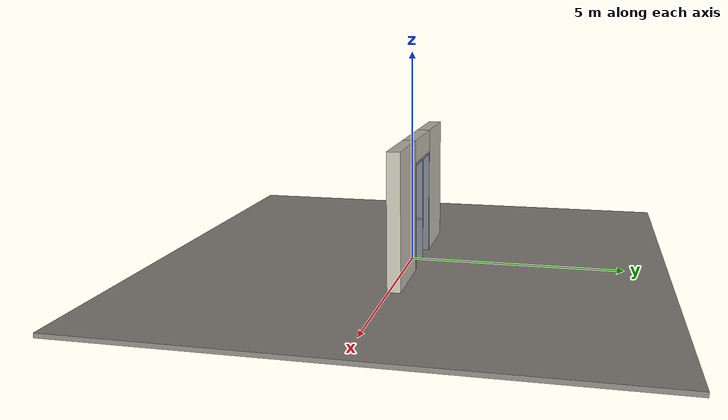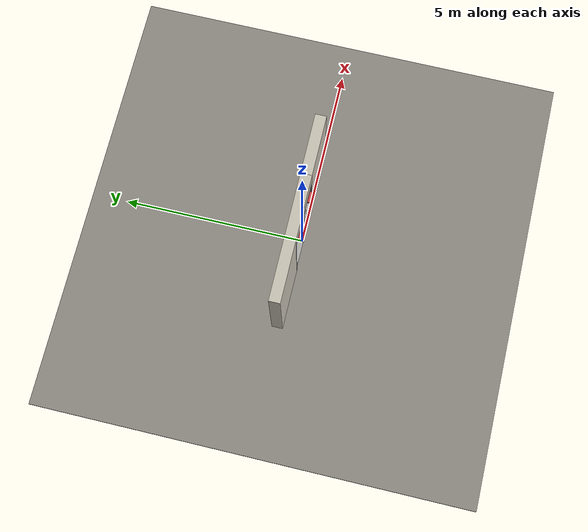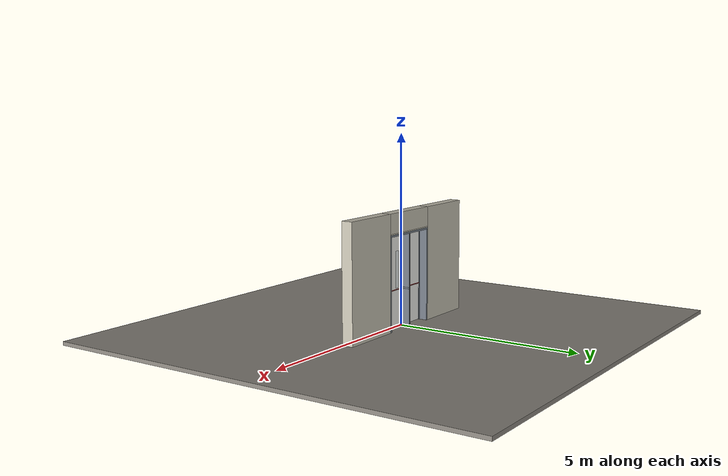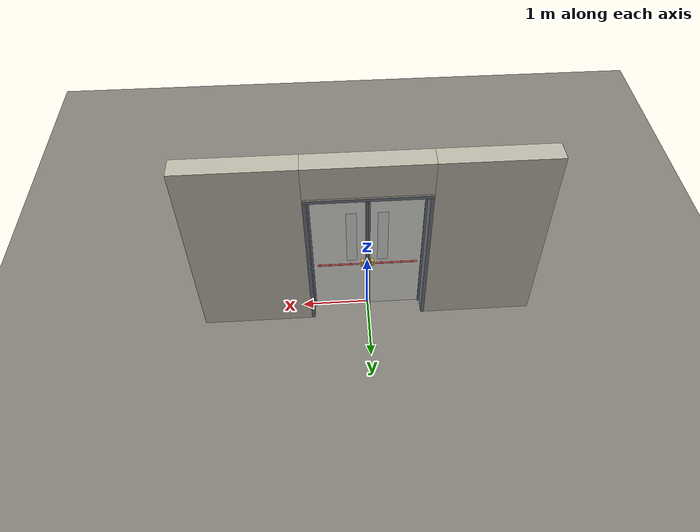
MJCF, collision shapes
<?xml version="1.0" ?>
<mujoco model="db0614_swing_double_full">
  <compiler angle="radian" meshdir="../../hardware" texturedir="../../textures" autolimits="true" inertiafromgeom="false"/>
  <option timestep="0.002" integrator="implicitfast" cone="elliptic" impratio="10" noslip_iterations="3">
    <flag multiccd="enable"/>
  </option>
  <size memory="16M"/>
  <default>
    <geom condim="4" solref="0.005 1" solimp="0.95 0.99 0.001"/>
    <joint solreflimit="0.005 1" solimplimit="0.95 0.99 0.001"/>
    <tendon solreflimit="0.005 1"/>
    <equality solref="0.002 1"/>
  </default>
  <visual>
    <headlight ambient="0.4 0.4 0.4" diffuse="0.7 0.7 0.7" specular="0.2 0.2 0.2"/>
    <quality shadowsize="4096"/>
    <map znear="0.01" zfar="60"/>
  </visual>
  <asset>
    <mesh name="closer_body_fdc4667657" file="closer_body_fdc4667657.obj"/>
    <mesh name="crossbar_268e86df6c" file="crossbar_268e86df6c.obj"/>
    <mesh name="exit_sign_a6449bfa2c" file="exit_sign_a6449bfa2c.obj"/>
    <mesh name="hinge_e22b26c0c1" file="hinge_e22b26c0c1.obj"/>
    <mesh name="hinge_jamb_e1d088f8dc" file="hinge_jamb_e1d088f8dc.obj"/>
    <mesh name="pull_1e5d69a91a" file="pull_1e5d69a91a.obj"/>
    <material name="mat_floor" rgba="0.55 0.53 0.5 1" specular="0.2" shininess="0.15" reflectance="0"/>
    <material name="mat_wall" rgba="0.78 0.76 0.7 1" specular="0.2" shininess="0.1" reflectance="0"/>
    <material name="mat_leaf_a" rgba="0.93 0.93 0.91 1" specular="0.2" shininess="0.42" reflectance="0"/>
    <material name="mat_glass" rgba="0.85 0.92 0.95 0.25" specular="0.2" shininess="0.95" reflectance="0.1"/>
    <material name="mat_hinge" rgba="0.65 0.66 0.68 1" specular="0.74" shininess="0.5" reflectance="0.36"/>
    <material name="mat_op_brass" rgba="0.85 0.66 0.3 1" specular="0.8" shininess="0.75" reflectance="0.4"/>
    <material name="mat_op_stainless" rgba="0.75 0.76 0.77 1" specular="0.8" shininess="0.65" reflectance="0.4"/>
    <material name="mat_bolt" rgba="0.75 0.76 0.77 1" specular="0.8" shininess="0.65" reflectance="0.4"/>
    <material name="mat_closer" rgba="0.22 0.17 0.13 1" specular="0.8" shininess="0.6" reflectance="0.4"/>
    <material name="mat_exit_sign" rgba="0.85 0.1 0.1 1" specular="0.2" shininess="0.6" reflectance="0"/>
    <material name="mat_sign_bracket" rgba="0.8 0.81 0.83 1" specular="0.8" shininess="0.6" reflectance="0.4"/>
    <material name="mat_leaf_b" rgba="0.93 0.93 0.91 1" specular="0.2" shininess="0.42" reflectance="0"/>
    <material name="mat_frame" rgba="0.45 0.48 0.52 1" specular="0.32" shininess="0.6" reflectance="0.08"/>
    <texture name="skybox" type="skybox" builtin="gradient" rgb1="0.6 0.7 0.85" rgb2="0.9 0.92 0.95" width="256" height="256"/>
  </asset>
  <worldbody>
    <light name="sun" pos="1.5 -2.5 4" dir="-0.3 0.5 -0.8" directional="true" diffuse="0.8 0.8 0.8" specular="0.3 0.3 0.3" castshadow="true"/>
    <light name="fill" pos="-1.5 2.5 3" dir="0.3 -0.5 -0.7" directional="true" diffuse="0.35 0.35 0.4" castshadow="false"/>
    <camera name="robot_view" pos="0 -2.814812 2.043887" xyaxes="1 0 0 0 0.26963 0.962964" fovy="52"/>
    <camera name="far_view" pos="0 3.030813 2.043887" xyaxes="-1 0 0 0 -0.26963 0.962964" fovy="52"/>
    <camera name="iso" pos="-2.221337 -2.347163 2.511538" xyaxes="0.741536 -0.670913 0 0.242917 0.268487 0.932151" fovy="46"/>
    <camera name="detail_handle" pos="0.062 -0.882 1.296" xyaxes="0.97561 0.219512 0 -0.070934 0.315262 0.94635" fovy="38"/>
    <geom name="floor" type="box" size="6 6 0.05" pos="0 0 -0.05" material="mat_floor" group="0" contype="1" conaffinity="1" friction="0.8 0.005 0.0001" density="2400"/>
    <geom name="wall_left" type="box" size="0.81625 0.15 1.5255" pos="-1.68375 0.108 1.5255" material="mat_wall" group="0" contype="1" conaffinity="1" friction="0.6 0.005 0.0001" density="800"/>
    <geom name="wall_right" type="box" size="0.81625 0.15 1.5255" pos="1.68375 0.108 1.5255" material="mat_wall" group="0" contype="1" conaffinity="1" friction="0.6 0.005 0.0001" density="800"/>
    <geom name="wall_header" type="box" size="0.8675 0.15 0.26" pos="0 0.108 2.791" material="mat_wall" group="0" contype="1" conaffinity="1" friction="0.6 0.005 0.0001" density="800"/>
    <geom name="hinge_0_jamb" type="mesh" mesh="hinge_jamb_e1d088f8dc" pos="-0.8145 -0.029 0.259" material="mat_hinge" group="1" contype="0" conaffinity="0" density="7850"/>
    <geom name="hinge_1_jamb" type="mesh" mesh="hinge_jamb_e1d088f8dc" pos="-0.8145 -0.029 0.928333" material="mat_hinge" group="1" contype="0" conaffinity="0" density="7850"/>
    <geom name="hinge_2_jamb" type="mesh" mesh="hinge_jamb_e1d088f8dc" pos="-0.8145 -0.029 1.597667" material="mat_hinge" group="1" contype="0" conaffinity="0" density="7850"/>
    <geom name="hinge_3_jamb" type="mesh" mesh="hinge_jamb_e1d088f8dc" pos="-0.8145 -0.029 2.267" material="mat_hinge" group="1" contype="0" conaffinity="0" density="7850"/>
    <geom name="exit_sign" type="mesh" mesh="exit_sign_a6449bfa2c" pos="0 0.15 2.751" material="mat_exit_sign" group="2" contype="0" conaffinity="0" density="500"/>
    <geom name="hinge_0_jamb_2" type="mesh" mesh="hinge_jamb_e1d088f8dc" pos="0.8145 -0.029 0.259" quat="0 0 1 0" material="mat_hinge" group="1" contype="0" conaffinity="0" density="7850"/>
    <geom name="hinge_1_jamb_2" type="mesh" mesh="hinge_jamb_e1d088f8dc" pos="0.8145 -0.029 0.928333" quat="0 0 1 0" material="mat_hinge" group="1" contype="0" conaffinity="0" density="7850"/>
    <geom name="hinge_2_jamb_2" type="mesh" mesh="hinge_jamb_e1d088f8dc" pos="0.8145 -0.029 1.597667" quat="0 0 1 0" material="mat_hinge" group="1" contype="0" conaffinity="0" density="7850"/>
    <geom name="hinge_3_jamb_2" type="mesh" mesh="hinge_jamb_e1d088f8dc" pos="0.8145 -0.029 2.267" quat="0 0 1 0" material="mat_hinge" group="1" contype="0" conaffinity="0" density="7850"/>
    <geom name="jamb_l" type="box" size="0.025 0.15 1.2255" pos="-0.8425 0.108 1.2255" material="mat_frame" group="0" contype="1" conaffinity="1" friction="0.6 0.005 0.0001" density="300"/>
    <geom name="jamb_r" type="box" size="0.025 0.15 1.2255" pos="0.8425 0.108 1.2255" material="mat_frame" group="0" contype="1" conaffinity="1" friction="0.6 0.005 0.0001" density="300"/>
    <geom name="jamb_head" type="box" size="0.8675 0.15 0.025" pos="0 0.108 2.476" material="mat_frame" group="0" contype="1" conaffinity="1" friction="0.6 0.005 0.0001" density="300"/>
    <geom name="head_stud" type="box" size="0.8675 0.15 0.015" pos="0 0.108 2.516" material="mat_wall" group="0" contype="1" conaffinity="1" friction="0.6 0.005 0.0001" density="500"/>
    <geom name="stop_l" type="box" size="0.015 0.008 1.2255" pos="-0.8025 0.0305 1.2255" material="mat_frame" group="0" contype="1" conaffinity="1" friction="0.6 0.005 0.0001" density="300"/>
    <geom name="stop_r" type="box" size="0.015 0.008 1.2255" pos="0.8025 0.0305 1.2255" material="mat_frame" group="0" contype="1" conaffinity="1" friction="0.6 0.005 0.0001" density="300"/>
    <geom name="stop_head" type="box" size="0.8175 0.008 0.015" pos="0 0.0305 2.436" material="mat_frame" group="0" contype="1" conaffinity="1" friction="0.6 0.005 0.0001" density="300"/>
    <geom name="mullion_a_1016_wall_n" type="box" size="0.0125 0.1235 0.02" pos="-0.0125 0.1345 1.016" material="mat_frame" group="0" contype="1" conaffinity="1" friction="0.6 0.005 0.0001" density="300"/>
    <geom name="mullion_a_1016_wall_p" type="box" size="0.0125 0.008 0.02" pos="-0.0125 -0.019 1.016" material="mat_frame" group="0" contype="1" conaffinity="1" friction="0.6 0.005 0.0001" density="300"/>
    <geom name="mullion_a_1016_ramp" type="box" size="0.0125 0.020156 0.02" pos="-0.004147 -0.038298 1.016" quat="0.9665 0 0 0.256668" material="mat_frame" group="0" contype="1" conaffinity="1" friction="0.12 0.005 0.0001" density="300"/>
    <geom name="mullion_a_1016_back" type="box" size="0.002 0.011 0.02" pos="0 0 1.016" material="mat_frame" group="0" contype="1" conaffinity="1" friction="0.6 0.005 0.0001" density="300"/>
    <geom name="mullion_a_seg_0" type="box" size="0.0125 0.15 0.498" pos="-0.0125 0.108 0.498" material="mat_frame" group="0" contype="1" conaffinity="1" friction="0.6 0.005 0.0001" density="300"/>
    <geom name="mullion_a_seg_1" type="box" size="0.0125 0.15 0.7075" pos="-0.0125 0.108 1.7435" material="mat_frame" group="0" contype="1" conaffinity="1" friction="0.6 0.005 0.0001" density="300"/>
    <geom name="mullion_b_1016_wall_n" type="box" size="0.0125 0.1235 0.02" pos="0.0125 0.1345 1.016" material="mat_frame" group="0" contype="1" conaffinity="1" friction="0.6 0.005 0.0001" density="300"/>
    <geom name="mullion_b_1016_wall_p" type="box" size="0.0125 0.008 0.02" pos="0.0125 -0.019 1.016" material="mat_frame" group="0" contype="1" conaffinity="1" friction="0.6 0.005 0.0001" density="300"/>
    <geom name="mullion_b_1016_ramp" type="box" size="0.0125 0.020156 0.02" pos="0.004147 -0.038298 1.016" quat="0.9665 0 0 -0.256668" material="mat_frame" group="0" contype="1" conaffinity="1" friction="0.12 0.005 0.0001" density="300"/>
    <geom name="mullion_b_seg_0" type="box" size="0.0125 0.15 0.498" pos="0.0125 0.108 0.498" material="mat_frame" group="0" contype="1" conaffinity="1" friction="0.6 0.005 0.0001" density="300"/>
    <geom name="mullion_b_seg_1" type="box" size="0.0125 0.15 0.7075" pos="0.0125 0.108 1.7435" material="mat_frame" group="0" contype="1" conaffinity="1" friction="0.6 0.005 0.0001" density="300"/>
    <site name="approach_point" pos="0 -1.5 0" quat="1 0 0 0" size="0.05" rgba="0.2 0.9 0.2 0.5" group="4"/>
    <site name="goal_point" pos="0 1.5 0" quat="1 0 0 0" size="0.05" rgba="0.2 0.9 0.2 0.5" group="4"/>
    <site name="door_plane_center" pos="0 0 1.2255" quat="1 0 0 0" size="0.02" rgba="0.2 0.9 0.2 0.5" group="4"/>
    <site name="approach_point_2" pos="0 -1.5 0" quat="1 0 0 0" size="0.05" rgba="0.2 0.9 0.2 0.5" group="4"/>
    <site name="goal_point_2" pos="0 1.5 0" quat="1 0 0 0" size="0.05" rgba="0.2 0.9 0.2 0.5" group="4"/>
    <site name="door_plane_center_2" pos="0 0 1.2255" quat="1 0 0 0" size="0.02" rgba="0.2 0.9 0.2 0.5" group="4"/>
    <site name="approach_point_3" pos="0 -1.5 0" quat="1 0 0 0" size="0.05" rgba="0.2 0.9 0.2 0.5" group="4"/>
    <site name="goal_point_3" pos="0 1.5 0" quat="1 0 0 0" size="0.05" rgba="0.2 0.9 0.2 0.5" group="4"/>
    <site name="door_plane_center_3" pos="0 0 1.2255" quat="1 0 0 0" size="0.02" rgba="0.2 0.9 0.2 0.5" group="4"/>
    <body name="leaf_a" pos="-0.8175 0 0">
      <inertial pos="0.37652 -0.015189 1.461667" mass="58.67362" quat="0.501341 -0.480511 -0.508021 -0.509589" diaginertia="2.726064846 35.177713769 37.796969503"/>
      <joint name="leaf_a_hinge" type="hinge" axis="0 0 -1" pos="0.003 -0.029 0" limited="true" range="0 1.570796" solreflimit="0.02 1" damping="12.192359" frictionloss="1.992902" stiffness="15.011494" springref="-1.939847" armature="0.02"/>
      <geom name="leaf_a_slab" type="box" size="0.39325 0.022 1.219" pos="0.39625 0 1.228" material="mat_leaf_a" group="0" contype="1" conaffinity="1" friction="0.4 0.005 0.0001" density="1"/>
      <geom name="leaf_a_glass_0" type="box" size="0.075 0.0228 0.4876" pos="0.5945 0 1.52056" material="mat_glass" group="1" contype="0" conaffinity="0" density="1"/>
      <geom name="hinge_0" type="mesh" mesh="hinge_e22b26c0c1" pos="0.003 -0.029 0.259" material="mat_hinge" group="1" contype="0" conaffinity="0" density="7850"/>
      <geom name="hinge_1" type="mesh" mesh="hinge_e22b26c0c1" pos="0.003 -0.029 0.928333" material="mat_hinge" group="1" contype="0" conaffinity="0" density="7850"/>
      <geom name="hinge_2" type="mesh" mesh="hinge_e22b26c0c1" pos="0.003 -0.029 1.597667" material="mat_hinge" group="1" contype="0" conaffinity="0" density="7850"/>
      <geom name="hinge_3" type="mesh" mesh="hinge_e22b26c0c1" pos="0.003 -0.029 2.267" material="mat_hinge" group="1" contype="0" conaffinity="0" density="7850"/>
      <geom name="leaf_a_exit_device_case" type="box" size="0.022 0.033 0.045" pos="0.7445 0.055 1.016" material="mat_op_brass" group="0" contype="1" conaffinity="1" friction="0.6 0.005 0.0001" density="3000"/>
      <geom name="leaf_a_far_pull_n" type="mesh" mesh="pull_1e5d69a91a" pos="0.6995 -0.022 1.016" quat="0.707107 0.707107 0 0" material="mat_op_stainless" group="1" contype="0" conaffinity="0" density="3000"/>
      <geom name="leaf_a_far_pull_col_n" type="capsule" size="0.0095 0.08" pos="0.6995 -0.082 1.016" material="mat_op_stainless" group="3" contype="1" conaffinity="1" rgba="0.8 0.3 0.3 0.25" friction="0.7 0.01 0.0001" density="3000"/>
      <geom name="closer_body" type="mesh" mesh="closer_body_fdc4667657" pos="0.3 -0.022 2.358" quat="0.707107 0.707107 0 0" material="mat_closer" group="1" contype="0" conaffinity="0" density="2000"/>
      <geom name="closer_body_col" type="box" size="0.145 0.05 0.035" pos="0.3 -0.072 2.358" material="mat_closer" group="3" contype="1" conaffinity="1" rgba="0.8 0.3 0.3 0.25" friction="0.6 0.005 0.0001" density="2000"/>
      <site name="leaf_a_far_pull_grip_n" pos="0.6995 -0.082 1.016" quat="1 0 0 0" size="0.012" rgba="0.2 0.9 0.2 0.5" group="4"/>
      <site name="leaf_a_edge_mid" pos="0.7895 0 1.219" quat="1 0 0 0" size="0.02" rgba="0.2 0.9 0.2 0.5" group="4"/>
      <body name="leaf_a_exit_device" pos="0.394563 0.022 1.016">
        <inertial pos="0 0.057644 0" mass="1.934494" quat="1 0 0 0" diaginertia="0.000338382 0.068956491 0.069151805"/>
        <joint name="leaf_a_exit_device_hinge" type="hinge" axis="1 0 0" limited="true" range="0 0.35" damping="0.8971" frictionloss="0.14" stiffness="12" springref="-0.333333" armature="0.01"/>
        <geom name="leaf_a_exit_device_mesh" type="mesh" mesh="crossbar_268e86df6c" pos="0 0 0" quat="-0.707107 0.707107 0 0" material="mat_op_brass" group="1" contype="0" conaffinity="0" density="3000"/>
        <geom name="leaf_a_exit_device_col" type="capsule" size="0.0125 0.294937" pos="0 0.06 0" quat="0.707107 0 0.707107 0" material="mat_op_brass" group="3" contype="1" conaffinity="1" rgba="0.8 0.3 0.3 0.25" friction="0.7 0.01 0.0001" density="3000"/>
        <site name="leaf_a_exit_device_push" pos="0 0.06 0" quat="1 0 0 0" size="0.015" rgba="0.2 0.9 0.2 0.5" group="4"/>
      </body>
      <body name="leaf_a_latch_bolt" pos="0.7895 0 1.016">
        <inertial pos="-0.0055 0 0" mass="0.102826" quat="0.92388 -0.382683 0 0" diaginertia="0.000004365 0.000018287 0.000018287"/>
        <joint name="leaf_a_latch_bolt_slide" type="slide" axis="-1 0 0" limited="true" range="0 0.019" damping="2" frictionloss="0.3" stiffness="800" springref="-0.01" armature="0.1"/>
        <geom name="leaf_a_latch_bolt_capsule" type="capsule" size="0.0095 0.015" pos="-0.0055 0 0" quat="0.707107 0 0.707107 0" material="mat_bolt" group="0" contype="1" conaffinity="1" friction="0.2 0.005 0.0001" density="8500"/>
      </body>
    </body>
    <body name="leaf_b" pos="0.8175 0 0">
      <inertial pos="-0.37652 -0.015189 1.461667" mass="58.67362" quat="0.509589 -0.508021 -0.480511 -0.501341" diaginertia="2.726064846 35.177713769 37.796969503"/>
      <joint name="leaf_b_hinge" type="hinge" axis="0 0 1" pos="-0.003 -0.029 0" limited="true" range="0 1.570796" solreflimit="0.02 1" damping="12.192359" frictionloss="1.992902" stiffness="15.011494" springref="-1.939847" armature="0.02"/>
      <geom name="leaf_b_slab" type="box" size="0.39325 0.022 1.219" pos="-0.39625 0 1.228" material="mat_leaf_b" group="0" contype="1" conaffinity="1" friction="0.4 0.005 0.0001" density="1"/>
      <geom name="leaf_b_glass_0" type="box" size="0.075 0.0228 0.4876" pos="-0.5945 0 1.52056" material="mat_glass" group="1" contype="0" conaffinity="0" density="1"/>
      <geom name="hinge_0_2" type="mesh" mesh="hinge_e22b26c0c1" pos="-0.003 -0.029 0.259" quat="0 0 1 0" material="mat_hinge" group="1" contype="0" conaffinity="0" density="7850"/>
      <geom name="hinge_1_2" type="mesh" mesh="hinge_e22b26c0c1" pos="-0.003 -0.029 0.928333" quat="0 0 1 0" material="mat_hinge" group="1" contype="0" conaffinity="0" density="7850"/>
      <geom name="hinge_2_2" type="mesh" mesh="hinge_e22b26c0c1" pos="-0.003 -0.029 1.597667" quat="0 0 1 0" material="mat_hinge" group="1" contype="0" conaffinity="0" density="7850"/>
      <geom name="hinge_3_2" type="mesh" mesh="hinge_e22b26c0c1" pos="-0.003 -0.029 2.267" quat="0 0 1 0" material="mat_hinge" group="1" contype="0" conaffinity="0" density="7850"/>
      <geom name="leaf_b_exit_device_case" type="box" size="0.022 0.033 0.045" pos="-0.7445 0.055 1.016" material="mat_op_brass" group="0" contype="1" conaffinity="1" friction="0.6 0.005 0.0001" density="3000"/>
      <geom name="leaf_b_far_pull_n" type="mesh" mesh="pull_1e5d69a91a" pos="-0.6995 -0.022 1.016" quat="0 0 -0.707107 0.707107" material="mat_op_stainless" group="1" contype="0" conaffinity="0" density="3000"/>
      <geom name="leaf_b_far_pull_col_n" type="capsule" size="0.0095 0.08" pos="-0.6995 -0.082 1.016" material="mat_op_stainless" group="3" contype="1" conaffinity="1" rgba="0.8 0.3 0.3 0.25" friction="0.7 0.01 0.0001" density="3000"/>
      <geom name="closer_body_2" type="mesh" mesh="closer_body_fdc4667657" pos="-0.3 -0.022 2.358" quat="0 0 -0.707107 0.707107" material="mat_closer" group="1" contype="0" conaffinity="0" density="2000"/>
      <geom name="closer_body_col_2" type="box" size="0.145 0.05 0.035" pos="-0.3 -0.072 2.358" material="mat_closer" group="3" contype="1" conaffinity="1" rgba="0.8 0.3 0.3 0.25" friction="0.6 0.005 0.0001" density="2000"/>
      <site name="leaf_b_far_pull_grip_n" pos="-0.6995 -0.082 1.016" quat="1 0 0 0" size="0.012" rgba="0.2 0.9 0.2 0.5" group="4"/>
      <site name="leaf_b_edge_mid" pos="-0.7895 0 1.219" quat="1 0 0 0" size="0.02" rgba="0.2 0.9 0.2 0.5" group="4"/>
      <body name="leaf_b_exit_device" pos="-0.394563 0.022 1.016">
        <inertial pos="0 0.057644 0" mass="1.934494" quat="0 1 0 0" diaginertia="0.000338382 0.068956491 0.069151805"/>
        <joint name="leaf_b_exit_device_hinge" type="hinge" axis="-1 0 0" limited="true" range="0 0.35" damping="0.8971" frictionloss="0.14" stiffness="12" springref="-0.333333" armature="0.01"/>
        <geom name="leaf_b_exit_device_mesh" type="mesh" mesh="crossbar_268e86df6c" pos="0 0 0" quat="0 0 0.707107 0.707107" material="mat_op_brass" group="1" contype="0" conaffinity="0" density="3000"/>
        <geom name="leaf_b_exit_device_col" type="capsule" size="0.0125 0.294937" pos="0 0.06 0" quat="0.707107 0 0.707107 0" material="mat_op_brass" group="3" contype="1" conaffinity="1" rgba="0.8 0.3 0.3 0.25" friction="0.7 0.01 0.0001" density="3000"/>
        <site name="leaf_b_exit_device_push" pos="0 0.06 0" quat="1 0 0 0" size="0.015" rgba="0.2 0.9 0.2 0.5" group="4"/>
      </body>
      <body name="leaf_b_latch_bolt" pos="-0.7895 0 1.016">
        <inertial pos="0.0055 0 0" mass="0.102826" quat="0.92388 0.382683 0 0" diaginertia="0.000004365 0.000018287 0.000018287"/>
        <joint name="leaf_b_latch_bolt_slide" type="slide" axis="1 0 0" limited="true" range="0 0.019" damping="2" frictionloss="0.3" stiffness="800" springref="-0.01" armature="0.1"/>
        <geom name="leaf_b_latch_bolt_capsule" type="capsule" size="0.0095 0.015" pos="0.0055 0 0" quat="0.707107 0 -0.707107 0" material="mat_bolt" group="0" contype="1" conaffinity="1" friction="0.2 0.005 0.0001" density="8500"/>
      </body>
    </body>
  </worldbody>
  <tendon>
    <fixed name="leaf_a_latch_bolt_coupling" limited="true" range="0 10">
      <joint joint="leaf_a_latch_bolt_slide" coef="1"/>
      <joint joint="leaf_a_exit_device_hinge" coef="-0.059375"/>
    </fixed>
    <fixed name="leaf_b_latch_bolt_coupling" limited="true" range="0 10">
      <joint joint="leaf_b_latch_bolt_slide" coef="1"/>
      <joint joint="leaf_b_exit_device_hinge" coef="-0.059375"/>
    </fixed>
  </tendon>
  <sensor>
    <jointpos name="leaf_a_hinge_pos" joint="leaf_a_hinge"/>
    <jointvel name="leaf_a_hinge_vel" joint="leaf_a_hinge"/>
    <jointpos name="leaf_a_exit_device_hinge_pos" joint="leaf_a_exit_device_hinge"/>
    <jointvel name="leaf_a_exit_device_hinge_vel" joint="leaf_a_exit_device_hinge"/>
    <jointpos name="leaf_a_latch_bolt_slide_pos" joint="leaf_a_latch_bolt_slide"/>
    <jointvel name="leaf_a_latch_bolt_slide_vel" joint="leaf_a_latch_bolt_slide"/>
    <jointpos name="leaf_b_hinge_pos" joint="leaf_b_hinge"/>
    <jointvel name="leaf_b_hinge_vel" joint="leaf_b_hinge"/>
    <jointpos name="leaf_b_exit_device_hinge_pos" joint="leaf_b_exit_device_hinge"/>
    <jointvel name="leaf_b_exit_device_hinge_vel" joint="leaf_b_exit_device_hinge"/>
    <jointpos name="leaf_b_latch_bolt_slide_pos" joint="leaf_b_latch_bolt_slide"/>
    <jointvel name="leaf_b_latch_bolt_slide_vel" joint="leaf_b_latch_bolt_slide"/>
  </sensor>
</mujoco>
